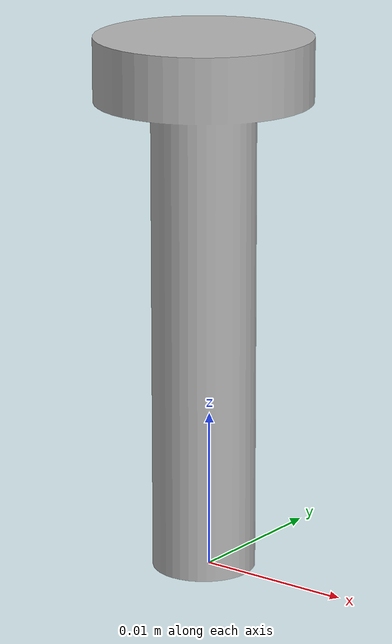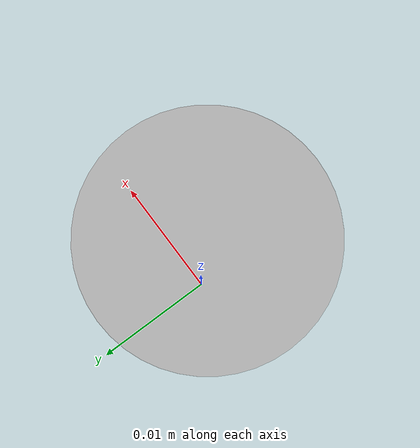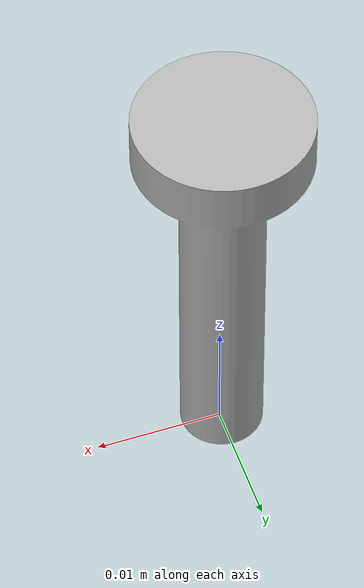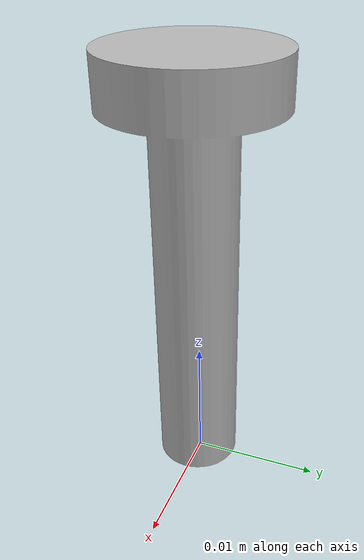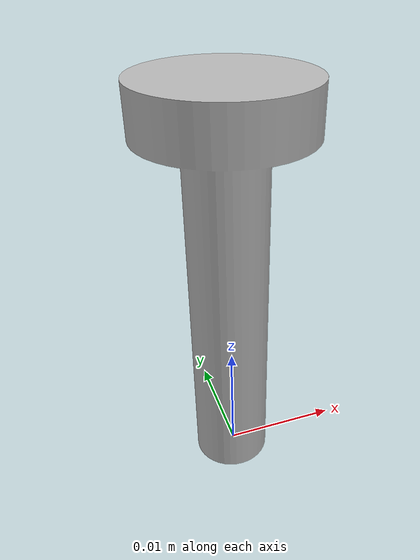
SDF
<?xml version='1.0'?>
<sdf version='1.6'>
  <model name="Bolt">
<static>false</static>
<link name= "bolt_link">
        <inertial>
           <pose>0.0 0.0 0.023845784 0 0 0</pose>
<!-- mass = 0.0132733013 -->
          <mass>0.0332733013</mass>
          <inertia>
            <ixx>1.61552e-06</ixx>
            <ixy>0</ixy>
            <ixz>-2.1381e-11</ixz>
            <iyy>1.61552e-06</iyy>
            <iyz>0</iyz>
            <izz>1.80747e-07</izz>
          </inertia>
        </inertial>
<collision name= "bolt collision">
 <geometry>
   <mesh>
     <uri>model://Bolt/meshes/Bolt.obj</uri>
      <scale> 1 1 1 </scale>
   </mesh>
</geometry>
 <surface>
    <contact>
         <poissons_ratio>0.347</poissons_ratio>
              <elastic_modulus>8.8e+09</elastic_modulus>
            <ode>
              <kp>100000</kp>
                <kd>1</kd>
                <max_vel>0.5</max_vel>
                <min_depth>0.001</min_depth>
            </ode>
      </contact>
          <friction>
            <ode>
              <mu>1.0</mu>
              <mu2>1.0</mu2>
            </ode>
          </friction>
  </surface>
</collision>
<visual name = "visual bearing">
  <geometry>
   <mesh>
     <uri>model://Bolt/meshes/Bolt.obj</uri>
      <scale> 1 1 1 </scale>
   </mesh>
</geometry>
</visual>
</link>
  </model>
</sdf>
